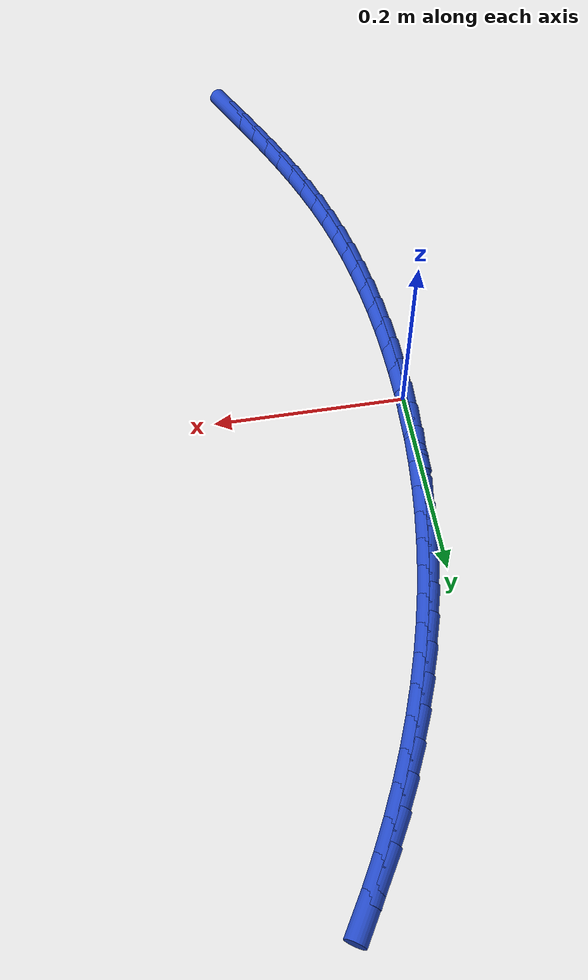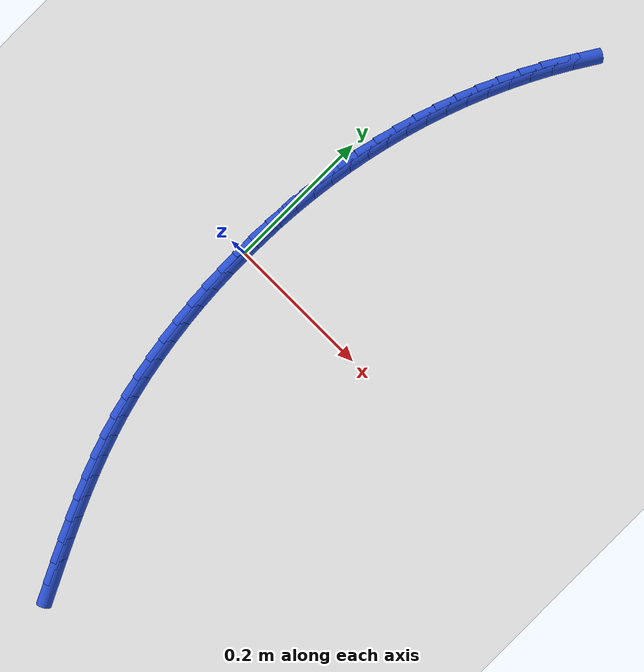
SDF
<sdf version="1.6">
 <world name="default">
  <model name="ground_plane">
   <static>1</static>
   <link name="link">
    <collision name="collision">
     <geometry><plane><normal>0 0 1</normal><size>100 100</size></plane></geometry>
     <surface><friction><ode><mu>100</mu><mu2>50</mu2></ode></friction></surface>
    </collision>
    <visual name="visual">
     <cast_shadows>0</cast_shadows>
     <geometry><plane><normal>0 0 1</normal><size>100 100</size></plane></geometry>
     <material>
      <script><uri>file://media/materials/scripts/gazebo.material</uri><name>Gazebo/WhiteGlow</name></script>
     </material>
    </visual>
   </link>
  </model>
  <model name="line">
   <link name="link_0">
    <pose>-7.806255641895632e-18 6.938893903907228e-17 0.01 0 1.57 1.5565138516227055</pose>
    <collision name="collision">
     <geometry><cylinder><radius>0.01</radius><length>0.08</length></cylinder></geometry>
    </collision>
    <visual name="visual">
     <material>
      <script><name>Gazebo/Blue</name><uri>file://media/materials/scripts/gazebo.material</uri></script>
     </material>
     <geometry><cylinder><radius>0.01</radius><length>0.08</length></cylinder></geometry>
    </visual>
   </link>
   <link name="link_1">
    <pose>0.0004160577210864394 0.0291286646938342 0.01 0 1.57 1.529346896306358</pose>
    <collision name="collision">
     <geometry><cylinder><radius>0.01</radius><length>0.08</length></cylinder></geometry>
    </collision>
    <visual name="visual">
     <material>
      <script><name>Gazebo/Blue</name><uri>file://media/materials/scripts/gazebo.material</uri></script>
     </material>
     <geometry><cylinder><radius>0.01</radius><length>0.08</length></cylinder></geometry>
    </visual>
   </link>
   <link name="link_2">
    <pose>0.001621099598157107 0.05818459319023853 0.01 0 1.57 1.5013668621153997</pose>
    <collision name="collision">
     <geometry><cylinder><radius>0.01</radius><length>0.08</length></cylinder></geometry>
    </collision>
    <visual name="visual">
     <material>
      <script><name>Gazebo/Blue</name><uri>file://media/materials/scripts/gazebo.material</uri></script>
     </material>
     <geometry><cylinder><radius>0.01</radius><length>0.08</length></cylinder></geometry>
    </visual>
   </link>
   <link name="link_3">
    <pose>0.003635785614684991 0.08715569002295097 0.01 0 1.57 1.4725827064689223</pose>
    <collision name="collision">
     <geometry><cylinder><radius>0.01</radius><length>0.08</length></cylinder></geometry>
    </collision>
    <visual name="visual">
     <material>
      <script><name>Gazebo/Blue</name><uri>file://media/materials/scripts/gazebo.material</uri></script>
     </material>
     <geometry><cylinder><radius>0.01</radius><length>0.08</length></cylinder></geometry>
    </visual>
   </link>
   <link name="link_4">
    <pose>0.006480775754143074 0.1160298597257092 0.01 0 1.57 1.4430092325313042</pose>
    <collision name="collision">
     <geometry><cylinder><radius>0.01</radius><length>0.08</length></cylinder></geometry>
    </collision>
    <visual name="visual">
     <material>
      <script><name>Gazebo/Blue</name><uri>file://media/materials/scripts/gazebo.material</uri></script>
     </material>
     <geometry><cylinder><radius>0.01</radius><length>0.08</length></cylinder></geometry>
    </visual>
   </link>
   <link name="link_5">
    <pose>0.01017673000000435 0.14479500683225116 0.01 0 1.57 1.4126675801249295</pose>
    <collision name="collision">
     <geometry><cylinder><radius>0.01</radius><length>0.08</length></cylinder></geometry>
    </collision>
    <visual name="visual">
     <material>
      <script><name>Gazebo/Blue</name><uri>file://media/materials/scripts/gazebo.material</uri></script>
     </material>
     <geometry><cylinder><radius>0.01</radius><length>0.08</length></cylinder></geometry>
    </visual>
   </link>
   <link name="link_6">
    <pose>0.014744308335741817 0.1734390358763146 0.01 0 1.57 1.3815856474778683</pose>
    <collision name="collision">
     <geometry><cylinder><radius>0.01</radius><length>0.08</length></cylinder></geometry>
    </collision>
    <visual name="visual">
     <material>
      <script><name>Gazebo/Blue</name><uri>file://media/materials/scripts/gazebo.material</uri></script>
     </material>
     <geometry><cylinder><radius>0.01</radius><length>0.08</length></cylinder></geometry>
    </visual>
   </link>
   <link name="link_7">
    <pose>0.020204170744828453 0.20194985139163726 0.01 0 1.57 1.3497984178220863</pose>
    <collision name="collision">
     <geometry><cylinder><radius>0.01</radius><length>0.08</length></cylinder></geometry>
    </collision>
    <visual name="visual">
     <material>
      <script><name>Gazebo/Blue</name><uri>file://media/materials/scripts/gazebo.material</uri></script>
     </material>
     <geometry><cylinder><radius>0.01</radius><length>0.08</length></cylinder></geometry>
    </visual>
   </link>
   <link name="link_8">
    <pose>0.026576977210737256 0.23031535791195712 0.01 0 1.57 1.3173481644162899</pose>
    <collision name="collision">
     <geometry><cylinder><radius>0.01</radius><length>0.08</length></cylinder></geometry>
    </collision>
    <visual name="visual">
     <material>
      <script><name>Gazebo/Blue</name><uri>file://media/materials/scripts/gazebo.material</uri></script>
     </material>
     <geometry><cylinder><radius>0.01</radius><length>0.08</length></cylinder></geometry>
    </visual>
   </link>
   <link name="link_9">
    <pose>0.033883387716941216 0.25852345997101184 0.01 0 1.57 1.2843129945605964</pose>
    <collision name="collision">
     <geometry><cylinder><radius>0.01</radius><length>0.08</length></cylinder></geometry>
    </collision>
    <visual name="visual">
     <material>
      <script><name>Gazebo/Blue</name><uri>file://media/materials/scripts/gazebo.material</uri></script>
     </material>
     <geometry><cylinder><radius>0.01</radius><length>0.08</length></cylinder></geometry>
    </visual>
   </link>
   <link name="link_10">
    <pose>0.042142767172437375 0.28656061243632613 0.01 0 1.57 1.2511400645709698</pose>
    <collision name="collision">
     <geometry><cylinder><radius>0.01</radius><length>0.08</length></cylinder></geometry>
    </collision>
    <visual name="visual">
     <material>
      <script><name>Gazebo/Blue</name><uri>file://media/materials/scripts/gazebo.material</uri></script>
     </material>
     <geometry><cylinder><radius>0.01</radius><length>0.08</length></cylinder></geometry>
    </visual>
   </link>
   <link name="link_11">
    <pose>0.05135500116808042 0.31439146563067333 0.01 0 1.57 1.2180713739405626</pose>
    <collision name="collision">
     <geometry><cylinder><radius>0.01</radius><length>0.08</length></cylinder></geometry>
    </collision>
    <visual name="visual">
     <material>
      <script><name>Gazebo/Blue</name><uri>file://media/materials/scripts/gazebo.material</uri></script>
     </material>
     <geometry><cylinder><radius>0.01</radius><length>0.08</length></cylinder></geometry>
    </visual>
   </link>
   <link name="link_12">
    <pose>0.061504928166512374 0.34196382658805824 0.01 0 1.57 1.1850021355753138</pose>
    <collision name="collision">
     <geometry><cylinder><radius>0.01</radius><length>0.08</length></cylinder></geometry>
    </collision>
    <visual name="visual">
     <material>
      <script><name>Gazebo/Blue</name><uri>file://media/materials/scripts/gazebo.material</uri></script>
     </material>
     <geometry><cylinder><radius>0.01</radius><length>0.08</length></cylinder></geometry>
    </visual>
   </link>
   <link name="link_13">
    <pose>0.07257699655564943 0.36922506570493185 0.01 0 1.57 1.1518203462694694</pose>
    <collision name="collision">
     <geometry><cylinder><radius>0.01</radius><length>0.08</length></cylinder></geometry>
    </collision>
    <visual name="visual">
     <material>
      <script><name>Gazebo/Blue</name><uri>file://media/materials/scripts/gazebo.material</uri></script>
     </material>
     <geometry><cylinder><radius>0.01</radius><length>0.08</length></cylinder></geometry>
    </visual>
   </link>
   <link name="link_14">
    <pose>0.08455565472340792 0.3961225533777458 0.01 0 1.57 1.1184150258684533</pose>
    <collision name="collision">
     <geometry><cylinder><radius>0.01</radius><length>0.08</length></cylinder></geometry>
    </collision>
    <visual name="visual">
     <material>
      <script><name>Gazebo/Blue</name><uri>file://media/materials/scripts/gazebo.material</uri></script>
     </material>
     <geometry><cylinder><radius>0.01</radius><length>0.08</length></cylinder></geometry>
    </visual>
   </link>
   <link name="link_15">
    <pose>0.097425351057704 0.4226036600029512 0.01 0 1.57 1.0846759340122978</pose>
    <collision name="collision">
     <geometry><cylinder><radius>0.01</radius><length>0.08</length></cylinder></geometry>
    </collision>
    <visual name="visual">
     <material>
      <script><name>Gazebo/Blue</name><uri>file://media/materials/scripts/gazebo.material</uri></script>
     </material>
     <geometry><cylinder><radius>0.01</radius><length>0.08</length></cylinder></geometry>
    </visual>
   </link>
   <link name="link_16">
    <pose>0.11117053394645397 0.44861575597699943 0.01 0 1.57 1.0504933724274816</pose>
    <collision name="collision">
     <geometry><cylinder><radius>0.01</radius><length>0.08</length></cylinder></geometry>
    </collision>
    <visual name="visual">
     <material>
      <script><name>Gazebo/Blue</name><uri>file://media/materials/scripts/gazebo.material</uri></script>
     </material>
     <geometry><cylinder><radius>0.01</radius><length>0.08</length></cylinder></geometry>
    </visual>
   </link>
   <link name="link_17">
    <pose>0.12577565177757405 0.47410621169634165 0.01 0 1.57 1.015758102492224</pose>
    <collision name="collision">
     <geometry><cylinder><radius>0.01</radius><length>0.08</length></cylinder></geometry>
    </collision>
    <visual name="visual">
     <material>
      <script><name>Gazebo/Blue</name><uri>file://media/materials/scripts/gazebo.material</uri></script>
     </material>
     <geometry><cylinder><radius>0.01</radius><length>0.08</length></cylinder></geometry>
    </visual>
   </link>
   <link name="link_213">
    <pose>0.12171176134377121 -0.4717969765204894 0.01 0 1.57 -1.1145601068761772</pose>
    <collision name="collision">
     <geometry><cylinder><radius>0.01</radius><length>0.08</length></cylinder></geometry>
    </collision>
    <visual name="visual">
     <material>
      <script><name>Gazebo/Blue</name><uri>file://media/materials/scripts/gazebo.material</uri></script>
     </material>
     <geometry><cylinder><radius>0.01</radius><length>0.08</length></cylinder></geometry>
    </visual>
   </link>
   <link name="link_214">
    <pose>0.10879791345169677 -0.44548352381890716 0.01 0 1.57 -1.12480518853914</pose>
    <collision name="collision">
     <geometry><cylinder><radius>0.01</radius><length>0.08</length></cylinder></geometry>
    </collision>
    <visual name="visual">
     <material>
      <script><name>Gazebo/Blue</name><uri>file://media/materials/scripts/gazebo.material</uri></script>
     </material>
     <geometry><cylinder><radius>0.01</radius><length>0.08</length></cylinder></geometry>
    </visual>
   </link>
   <link name="link_215">
    <pose>0.09624094559926415 -0.41922032618686755 0.01 0 1.57 -1.1392721548044242</pose>
    <collision name="collision">
     <geometry><cylinder><radius>0.01</radius><length>0.08</length></cylinder></geometry>
    </collision>
    <visual name="visual">
     <material>
      <script><name>Gazebo/Blue</name><uri>file://media/materials/scripts/gazebo.material</uri></script>
     </material>
     <geometry><cylinder><radius>0.01</radius><length>0.08</length></cylinder></geometry>
    </visual>
   </link>
   <link name="link_216">
    <pose>0.08413814868421171 -0.39293658589849007 0.01 0 1.57 -1.1579965197138258</pose>
    <collision name="collision">
     <geometry><cylinder><radius>0.01</radius><length>0.08</length></cylinder></geometry>
    </collision>
    <visual name="visual">
     <material>
      <script><name>Gazebo/Blue</name><uri>file://media/materials/scripts/gazebo.material</uri></script>
     </material>
     <geometry><cylinder><radius>0.01</radius><length>0.08</length></cylinder></geometry>
    </visual>
   </link>
   <link name="link_217">
    <pose>0.07258681360427686 -0.36656150522789166 0.01 0 1.57 -1.1809791794578393</pose>
    <collision name="collision">
     <geometry><cylinder><radius>0.01</radius><length>0.08</length></cylinder></geometry>
    </collision>
    <visual name="visual">
     <material>
      <script><name>Gazebo/Blue</name><uri>file://media/materials/scripts/gazebo.material</uri></script>
     </material>
     <geometry><cylinder><radius>0.01</radius><length>0.08</length></cylinder></geometry>
    </visual>
   </link>
   <link name="link_218">
    <pose>0.06168423125719731 -0.34002428644918997 0.01 0 1.57 -1.2081756056069781</pose>
    <collision name="collision">
     <geometry><cylinder><radius>0.01</radius><length>0.08</length></cylinder></geometry>
    </collision>
    <visual name="visual">
     <material>
      <script><name>Gazebo/Blue</name><uri>file://media/materials/scripts/gazebo.material</uri></script>
     </material>
     <geometry><cylinder><radius>0.01</radius><length>0.08</length></cylinder></geometry>
    </visual>
   </link>
   <link name="link_219">
    <pose>0.05152769254071054 -0.31325413183650236 0.01 0 1.57 -1.2394837327224688</pose>
    <collision name="collision">
     <geometry><cylinder><radius>0.01</radius><length>0.08</length></cylinder></geometry>
    </collision>
    <visual name="visual">
     <material>
      <script><name>Gazebo/Blue</name><uri>file://media/materials/scripts/gazebo.material</uri></script>
     </material>
     <geometry><cylinder><radius>0.01</radius><length>0.08</length></cylinder></geometry>
    </visual>
   </link>
   <link name="link_220">
    <pose>0.04221448835255479 -0.28618024366394784 0.01 0 1.57 -1.2746746316850168</pose>
    <collision name="collision">
     <geometry><cylinder><radius>0.01</radius><length>0.08</length></cylinder></geometry>
    </collision>
    <visual name="visual">
     <material>
      <script><name>Gazebo/Blue</name><uri>file://media/materials/scripts/gazebo.material</uri></script>
     </material>
     <geometry><cylinder><radius>0.01</radius><length>0.08</length></cylinder></geometry>
    </visual>
   </link>
   <link name="link_221">
    <pose>0.033840597400135786 -0.25873313403451753 0.01 0 1.57 -1.3113544459756694</pose>
    <collision name="collision">
     <geometry><cylinder><radius>0.01</radius><length>0.08</length></cylinder></geometry>
    </collision>
    <visual name="visual">
     <material>
      <script><name>Gazebo/Blue</name><uri>file://media/materials/scripts/gazebo.material</uri></script>
     </material>
     <geometry><cylinder><radius>0.01</radius><length>0.08</length></cylinder></geometry>
    </visual>
   </link>
   <link name="link_222">
    <pose>0.026451380663393986 -0.23089384168546567 0.01 0 1.57 -1.3466781042814249</pose>
    <collision name="collision">
     <geometry><cylinder><radius>0.01</radius><length>0.08</length></cylinder></geometry>
    </collision>
    <visual name="visual">
     <material>
      <script><name>Gazebo/Blue</name><uri>file://media/materials/scripts/gazebo.material</uri></script>
     </material>
     <geometry><cylinder><radius>0.01</radius><length>0.08</length></cylinder></geometry>
    </visual>
   </link>
   <link name="link_223">
    <pose>0.020026671747011737 -0.20270881480424408 0.01 0 1.57 -1.3805436787942553</pose>
    <collision name="collision">
     <geometry><cylinder><radius>0.01</radius><length>0.08</length></cylinder></geometry>
    </collision>
    <visual name="visual">
     <material>
      <script><name>Gazebo/Blue</name><uri>file://media/materials/scripts/gazebo.material</uri></script>
     </material>
     <geometry><cylinder><radius>0.01</radius><length>0.08</length></cylinder></geometry>
    </visual>
   </link>
   <link name="link_224">
    <pose>0.014541947695008314 -0.1742288502987713 0.01 0 1.57 -1.4130439508983665</pose>
    <collision name="collision">
     <geometry><cylinder><radius>0.01</radius><length>0.08</length></cylinder></geometry>
    </collision>
    <visual name="visual">
     <material>
      <script><name>Gazebo/Blue</name><uri>file://media/materials/scripts/gazebo.material</uri></script>
     </material>
     <geometry><cylinder><radius>0.01</radius><length>0.08</length></cylinder></geometry>
    </visual>
   </link>
   <link name="link_225">
    <pose>0.009972685551402485 -0.1455047450769638 0.01 0 1.57 -1.4442749624977065</pose>
    <collision name="collision">
     <geometry><cylinder><radius>0.01</radius><length>0.08</length></cylinder></geometry>
    </collision>
    <visual name="visual">
     <material>
      <script><name>Gazebo/Blue</name><uri>file://media/materials/scripts/gazebo.material</uri></script>
     </material>
     <geometry><cylinder><radius>0.01</radius><length>0.08</length></cylinder></geometry>
    </visual>
   </link>
   <link name="link_226">
    <pose>0.006294362360213179 -0.11658729604673845 0.01 0 1.57 -1.4743345001523258</pose>
    <collision name="collision">
     <geometry><cylinder><radius>0.01</radius><length>0.08</length></cylinder></geometry>
    </collision>
    <visual name="visual">
     <material>
      <script><name>Gazebo/Blue</name><uri>file://media/materials/scripts/gazebo.material</uri></script>
     </material>
     <geometry><cylinder><radius>0.01</radius><length>0.08</length></cylinder></geometry>
    </visual>
   </link>
   <link name="link_227">
    <pose>0.0034824551654593396 -0.08752730011601241 0.01 0 1.57 -1.5033210037103473</pose>
    <collision name="collision">
     <geometry><cylinder><radius>0.01</radius><length>0.08</length></cylinder></geometry>
    </collision>
    <visual name="visual">
     <material>
      <script><name>Gazebo/Blue</name><uri>file://media/materials/scripts/gazebo.material</uri></script>
     </material>
     <geometry><cylinder><radius>0.01</radius><length>0.08</length></cylinder></geometry>
    </visual>
   </link>
   <link name="link_228">
    <pose>0.0015124410111598636 -0.05837555419270202 0.01 0 1.57 -1.5313328416190959</pose>
    <collision name="collision">
     <geometry><cylinder><radius>0.01</radius><length>0.08</length></cylinder></geometry>
    </collision>
    <visual name="visual">
     <material>
      <script><name>Gazebo/Blue</name><uri>file://media/materials/scripts/gazebo.material</uri></script>
     </material>
     <geometry><cylinder><radius>0.01</radius><length>0.08</length></cylinder></geometry>
    </visual>
   </link>
   <link name="link_229">
    <pose>0.0003597969413337925 -0.029182855184725805 0.01 0 1.57 -1.5584678993554097</pose>
    <collision name="collision">
     <geometry><cylinder><radius>0.01</radius><length>0.08</length></cylinder></geometry>
    </collision>
    <visual name="visual">
     <material>
      <script><name>Gazebo/Blue</name><uri>file://media/materials/scripts/gazebo.material</uri></script>
     </material>
     <geometry><cylinder><radius>0.01</radius><length>0.08</length></cylinder></geometry>
    </visual>
   </link>
   <link name="link_230">
    <pose>4.336808689942018e-18 -1.0408340855860843e-16 0.01 0 1.57 1.5567692191526439</pose>
    <collision name="collision">
     <geometry><cylinder><radius>0.01</radius><length>0.08</length></cylinder></geometry>
    </collision>
    <visual name="visual">
     <material>
      <script><name>Gazebo/Blue</name><uri>file://media/materials/scripts/gazebo.material</uri></script>
     </material>
     <geometry><cylinder><radius>0.01</radius><length>0.08</length></cylinder></geometry>
    </visual>
   </link>
   <link name="link_231">
    <pose>0.0004085272311774354 0.029122214453558025 0.01 0 1.57 1.5310964936801288</pose>
    <collision name="collision">
     <geometry><cylinder><radius>0.01</radius><length>0.08</length></cylinder></geometry>
    </collision>
    <visual name="visual">
     <material>
      <script><name>Gazebo/Blue</name><uri>file://media/materials/scripts/gazebo.material</uri></script>
     </material>
     <geometry><cylinder><radius>0.01</radius><length>0.08</length></cylinder></geometry>
    </visual>
   </link>
   <link name="link_232">
    <pose>0.001560855678885027 0.05813299126803152 0.01 0 1.57 1.5439530364540708</pose>
    <collision name="collision">
     <geometry><cylinder><radius>0.01</radius><length>0.08</length></cylinder></geometry>
    </collision>
    <visual name="visual">
     <material>
      <script><name>Gazebo/Blue</name><uri>file://media/materials/scripts/gazebo.material</uri></script>
     </material>
     <geometry><cylinder><radius>0.01</radius><length>0.08</length></cylinder></geometry>
    </visual>
   </link>
  </model>
 </world>
</sdf>
